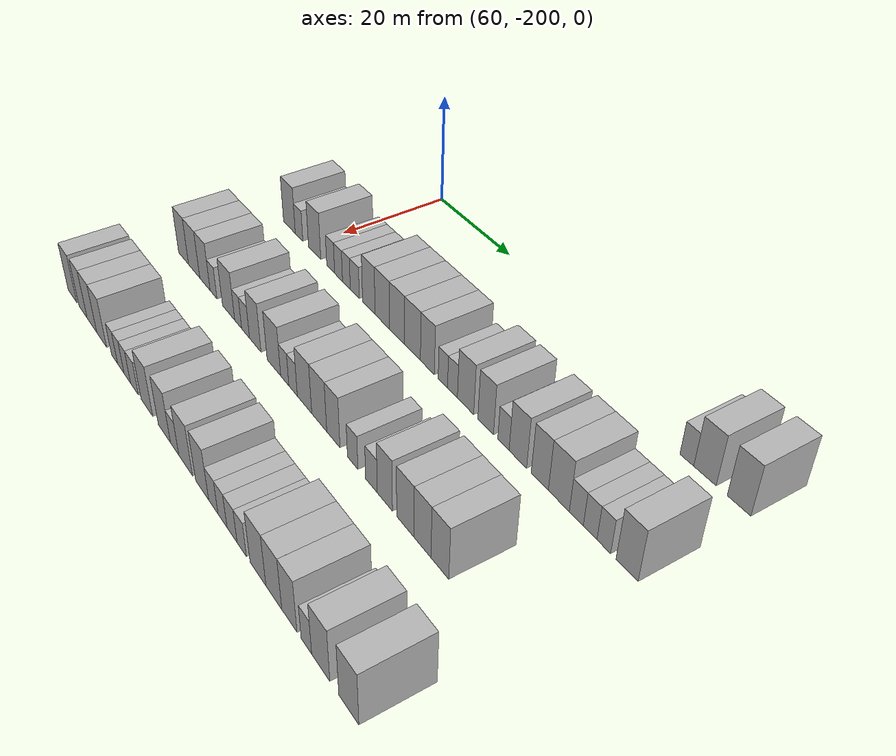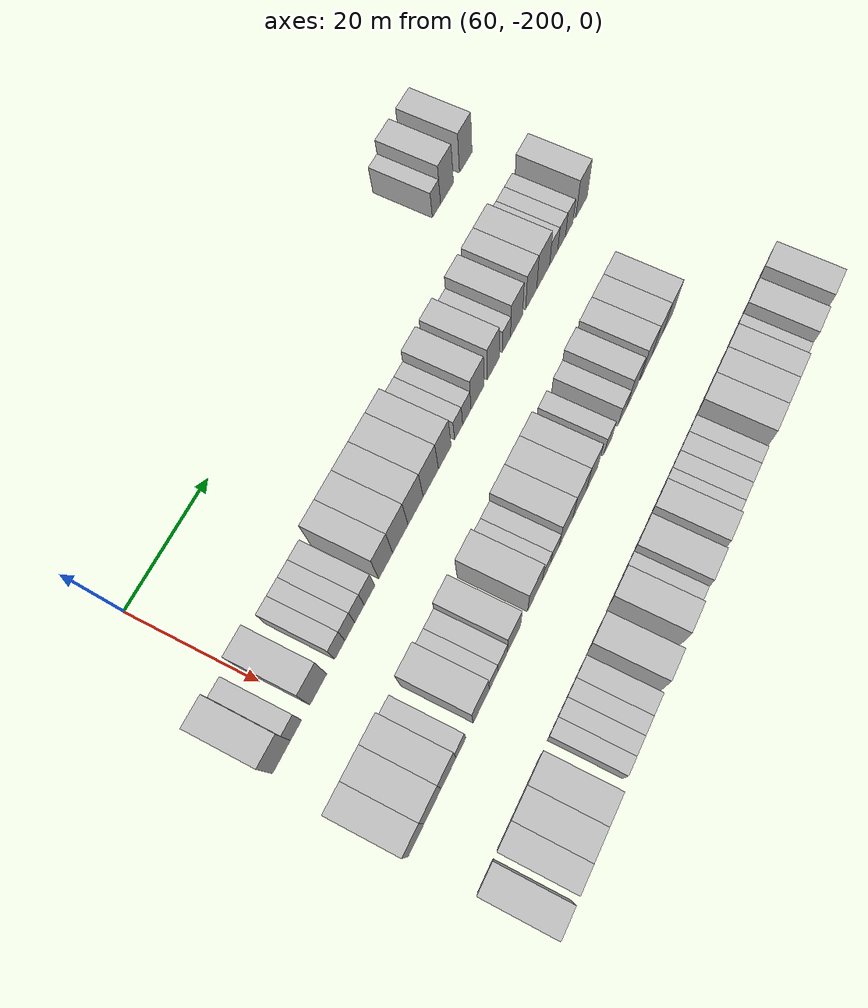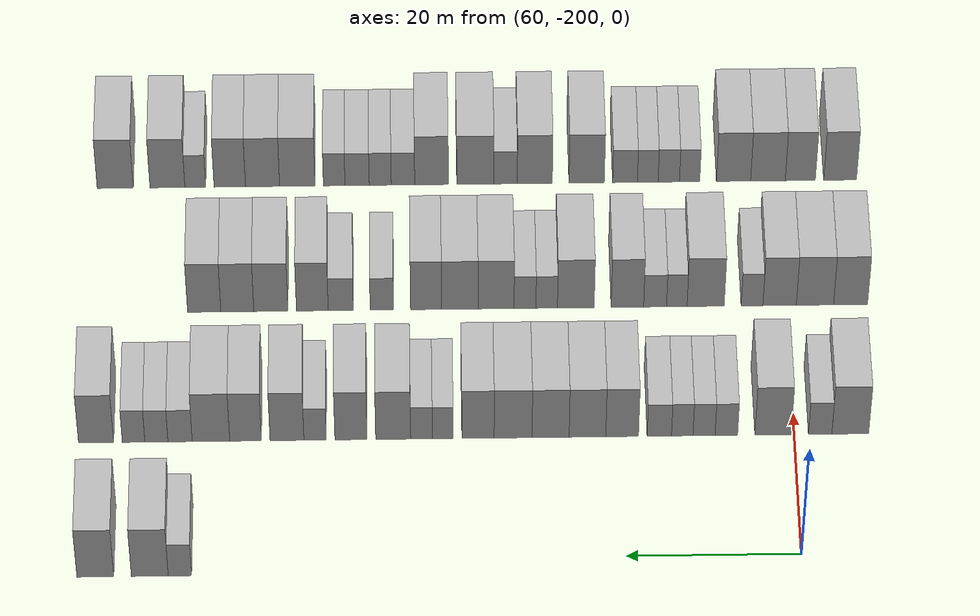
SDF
<sdf version="1.6">
 <world name="default">
  <model name="building_400">
   <static>1</static>
   <pose>63.0000 -129.1700 0 0.000000 0.000000 0.000000</pose>
   <link name="link">
    <pose>0 0 3.00 0 0 0</pose>
    <collision name="collision"><geometry><box><size>10.0000 2.6503 6.0000</size></box></geometry></collision>
    <visual name="visual">
     <cast_shadows>0</cast_shadows>
     <geometry><box><size>10.0000 2.6503 6.0000</size></box></geometry>
     <material>
      <script>
       <uri>model://HANNAS_wall/materials/scripts</uri>
       <uri>model://HANNAS_wall/materials/textures</uri>
       <name>vrc/HANNAS_wall</name>
      </script>
     </material>
    </visual>
   </link>
  </model>
  <model name="building_401">
   <static>1</static>
   <pose>63.0000 -125.7518 0 0.000000 0.000000 0.000000</pose>
   <link name="link">
    <pose>0 0 4.50 0 0 0</pose>
    <collision name="collision"><geometry><box><size>10.0000 4.1862 9.0000</size></box></geometry></collision>
    <visual name="visual">
     <cast_shadows>0</cast_shadows>
     <geometry><box><size>10.0000 4.1862 9.0000</size></box></geometry>
     <material>
      <script>
       <uri>model://HANNAS_wall/materials/scripts</uri>
       <uri>model://HANNAS_wall/materials/textures</uri>
       <name>vrc/HANNAS_wall</name>
      </script>
     </material>
    </visual>
   </link>
  </model>
  <model name="building_402">
   <static>1</static>
   <pose>63.0000 -119.5683 0 0.000000 0.000000 0.000000</pose>
   <link name="link">
    <pose>0 0 4.50 0 0 0</pose>
    <collision name="collision"><geometry><box><size>10.0000 4.1808 9.0000</size></box></geometry></collision>
    <visual name="visual">
     <cast_shadows>0</cast_shadows>
     <geometry><box><size>10.0000 4.1808 9.0000</size></box></geometry>
     <material>
      <script>
       <uri>model://HANNAS_wall/materials/scripts</uri>
       <uri>model://HANNAS_wall/materials/textures</uri>
       <name>vrc/HANNAS_wall</name>
      </script>
     </material>
    </visual>
   </link>
  </model>
  <model name="building_556">
   <static>1</static>
   <pose>82.0000 -206.4592 0 0.000000 0.000000 0.000000</pose>
   <link name="link">
    <pose>0 0 4.50 0 0 0</pose>
    <collision name="collision"><geometry><box><size>10.0000 4.2686 9.0000</size></box></geometry></collision>
    <visual name="visual">
     <cast_shadows>0</cast_shadows>
     <geometry><box><size>10.0000 4.2686 9.0000</size></box></geometry>
     <material>
      <script>
       <uri>model://HANNAS_wall/materials/scripts</uri>
       <uri>model://HANNAS_wall/materials/textures</uri>
       <name>vrc/HANNAS_wall</name>
      </script>
     </material>
    </visual>
   </link>
  </model>
  <model name="building_557">
   <static>1</static>
   <pose>82.0000 -202.9683 0 0.000000 0.000000 0.000000</pose>
   <link name="link">
    <pose>0 0 3.00 0 0 0</pose>
    <collision name="collision"><geometry><box><size>10.0000 2.7130 6.0000</size></box></geometry></collision>
    <visual name="visual">
     <cast_shadows>0</cast_shadows>
     <geometry><box><size>10.0000 2.7130 6.0000</size></box></geometry>
     <material>
      <script>
       <uri>model://HANNAS_wall/materials/scripts</uri>
       <uri>model://HANNAS_wall/materials/textures</uri>
       <name>vrc/HANNAS_wall</name>
      </script>
     </material>
    </visual>
   </link>
  </model>
  <model name="building_558">
   <static>1</static>
   <pose>82.0000 -197.5055 0 0.000000 0.000000 0.000000</pose>
   <link name="link">
    <pose>0 0 4.50 0 0 0</pose>
    <collision name="collision"><geometry><box><size>10.0000 4.2127 9.0000</size></box></geometry></collision>
    <visual name="visual">
     <cast_shadows>0</cast_shadows>
     <geometry><box><size>10.0000 4.2127 9.0000</size></box></geometry>
     <material>
      <script>
       <uri>model://HANNAS_wall/materials/scripts</uri>
       <uri>model://HANNAS_wall/materials/textures</uri>
       <name>vrc/HANNAS_wall</name>
      </script>
     </material>
    </visual>
   </link>
  </model>
  <model name="building_559">
   <static>1</static>
   <pose>82.0000 -192.0942 0 0.000000 0.000000 0.000000</pose>
   <link name="link">
    <pose>0 0 3.00 0 0 0</pose>
    <collision name="collision"><geometry><box><size>10.0000 2.6098 6.0000</size></box></geometry></collision>
    <visual name="visual">
     <cast_shadows>0</cast_shadows>
     <geometry><box><size>10.0000 2.6098 6.0000</size></box></geometry>
     <material>
      <script>
       <uri>model://HANNAS_wall/materials/scripts</uri>
       <uri>model://HANNAS_wall/materials/textures</uri>
       <name>vrc/HANNAS_wall</name>
      </script>
     </material>
    </visual>
   </link>
  </model>
  <model name="building_560">
   <static>1</static>
   <pose>82.0000 -189.5093 0 0.000000 0.000000 0.000000</pose>
   <link name="link">
    <pose>0 0 3.00 0 0 0</pose>
    <collision name="collision"><geometry><box><size>10.0000 2.5600 6.0000</size></box></geometry></collision>
    <visual name="visual">
     <cast_shadows>0</cast_shadows>
     <geometry><box><size>10.0000 2.5600 6.0000</size></box></geometry>
     <material>
      <script>
       <uri>model://HANNAS_wall/materials/scripts</uri>
       <uri>model://HANNAS_wall/materials/textures</uri>
       <name>vrc/HANNAS_wall</name>
      </script>
     </material>
    </visual>
   </link>
  </model>
  <model name="building_561">
   <static>1</static>
   <pose>82.0000 -186.9826 0 0.000000 0.000000 0.000000</pose>
   <link name="link">
    <pose>0 0 3.00 0 0 0</pose>
    <collision name="collision"><geometry><box><size>10.0000 2.4934 6.0000</size></box></geometry></collision>
    <visual name="visual">
     <cast_shadows>0</cast_shadows>
     <geometry><box><size>10.0000 2.4934 6.0000</size></box></geometry>
     <material>
      <script>
       <uri>model://HANNAS_wall/materials/scripts</uri>
       <uri>model://HANNAS_wall/materials/textures</uri>
       <name>vrc/HANNAS_wall</name>
      </script>
     </material>
    </visual>
   </link>
  </model>
  <model name="building_562">
   <static>1</static>
   <pose>82.0000 -184.3255 0 0.000000 0.000000 0.000000</pose>
   <link name="link">
    <pose>0 0 3.00 0 0 0</pose>
    <collision name="collision"><geometry><box><size>10.0000 2.8208 6.0000</size></box></geometry></collision>
    <visual name="visual">
     <cast_shadows>0</cast_shadows>
     <geometry><box><size>10.0000 2.8208 6.0000</size></box></geometry>
     <material>
      <script>
       <uri>model://HANNAS_wall/materials/scripts</uri>
       <uri>model://HANNAS_wall/materials/textures</uri>
       <name>vrc/HANNAS_wall</name>
      </script>
     </material>
    </visual>
   </link>
  </model>
  <model name="building_563">
   <static>1</static>
   <pose>82.0000 -180.0190 0 0.000000 0.000000 0.000000</pose>
   <link name="link">
    <pose>0 0 4.50 0 0 0</pose>
    <collision name="collision"><geometry><box><size>10.0000 3.7922 9.0000</size></box></geometry></collision>
    <visual name="visual">
     <cast_shadows>0</cast_shadows>
     <geometry><box><size>10.0000 3.7922 9.0000</size></box></geometry>
     <material>
      <script>
       <uri>model://HANNAS_wall/materials/scripts</uri>
       <uri>model://HANNAS_wall/materials/textures</uri>
       <name>vrc/HANNAS_wall</name>
      </script>
     </material>
    </visual>
   </link>
  </model>
  <model name="building_564">
   <static>1</static>
   <pose>82.0000 -175.9996 0 0.000000 0.000000 0.000000</pose>
   <link name="link">
    <pose>0 0 4.50 0 0 0</pose>
    <collision name="collision"><geometry><box><size>10.0000 4.2466 9.0000</size></box></geometry></collision>
    <visual name="visual">
     <cast_shadows>0</cast_shadows>
     <geometry><box><size>10.0000 4.2466 9.0000</size></box></geometry>
     <material>
      <script>
       <uri>model://HANNAS_wall/materials/scripts</uri>
       <uri>model://HANNAS_wall/materials/textures</uri>
       <name>vrc/HANNAS_wall</name>
      </script>
     </material>
    </visual>
   </link>
  </model>
  <model name="building_565">
   <static>1</static>
   <pose>82.0000 -171.7282 0 0.000000 0.000000 0.000000</pose>
   <link name="link">
    <pose>0 0 4.50 0 0 0</pose>
    <collision name="collision"><geometry><box><size>10.0000 4.2961 9.0000</size></box></geometry></collision>
    <visual name="visual">
     <cast_shadows>0</cast_shadows>
     <geometry><box><size>10.0000 4.2961 9.0000</size></box></geometry>
     <material>
      <script>
       <uri>model://HANNAS_wall/materials/scripts</uri>
       <uri>model://HANNAS_wall/materials/textures</uri>
       <name>vrc/HANNAS_wall</name>
      </script>
     </material>
    </visual>
   </link>
  </model>
  <model name="building_566">
   <static>1</static>
   <pose>82.0000 -167.3878 0 0.000000 0.000000 0.000000</pose>
   <link name="link">
    <pose>0 0 4.50 0 0 0</pose>
    <collision name="collision"><geometry><box><size>10.0000 4.3847 9.0000</size></box></geometry></collision>
    <visual name="visual">
     <cast_shadows>0</cast_shadows>
     <geometry><box><size>10.0000 4.3847 9.0000</size></box></geometry>
     <material>
      <script>
       <uri>model://HANNAS_wall/materials/scripts</uri>
       <uri>model://HANNAS_wall/materials/textures</uri>
       <name>vrc/HANNAS_wall</name>
      </script>
     </material>
    </visual>
   </link>
  </model>
  <model name="building_567">
   <static>1</static>
   <pose>82.0000 -163.3303 0 0.000000 0.000000 0.000000</pose>
   <link name="link">
    <pose>0 0 4.50 0 0 0</pose>
    <collision name="collision"><geometry><box><size>10.0000 3.7304 9.0000</size></box></geometry></collision>
    <visual name="visual">
     <cast_shadows>0</cast_shadows>
     <geometry><box><size>10.0000 3.7304 9.0000</size></box></geometry>
     <material>
      <script>
       <uri>model://HANNAS_wall/materials/scripts</uri>
       <uri>model://HANNAS_wall/materials/textures</uri>
       <name>vrc/HANNAS_wall</name>
      </script>
     </material>
    </visual>
   </link>
  </model>
  <model name="building_568">
   <static>1</static>
   <pose>82.0000 -159.2565 0 0.000000 0.000000 0.000000</pose>
   <link name="link">
    <pose>0 0 3.00 0 0 0</pose>
    <collision name="collision"><geometry><box><size>10.0000 2.4171 6.0000</size></box></geometry></collision>
    <visual name="visual">
     <cast_shadows>0</cast_shadows>
     <geometry><box><size>10.0000 2.4171 6.0000</size></box></geometry>
     <material>
      <script>
       <uri>model://HANNAS_wall/materials/scripts</uri>
       <uri>model://HANNAS_wall/materials/textures</uri>
       <name>vrc/HANNAS_wall</name>
      </script>
     </material>
    </visual>
   </link>
  </model>
  <model name="building_569">
   <static>1</static>
   <pose>82.0000 -156.7894 0 0.000000 0.000000 0.000000</pose>
   <link name="link">
    <pose>0 0 3.00 0 0 0</pose>
    <collision name="collision"><geometry><box><size>10.0000 2.5172 6.0000</size></box></geometry></collision>
    <visual name="visual">
     <cast_shadows>0</cast_shadows>
     <geometry><box><size>10.0000 2.5172 6.0000</size></box></geometry>
     <material>
      <script>
       <uri>model://HANNAS_wall/materials/scripts</uri>
       <uri>model://HANNAS_wall/materials/textures</uri>
       <name>vrc/HANNAS_wall</name>
      </script>
     </material>
    </visual>
   </link>
  </model>
  <model name="building_570">
   <static>1</static>
   <pose>82.0000 -153.5109 0 0.000000 0.000000 0.000000</pose>
   <link name="link">
    <pose>0 0 4.50 0 0 0</pose>
    <collision name="collision"><geometry><box><size>10.0000 4.0397 9.0000</size></box></geometry></collision>
    <visual name="visual">
     <cast_shadows>0</cast_shadows>
     <geometry><box><size>10.0000 4.0397 9.0000</size></box></geometry>
     <material>
      <script>
       <uri>model://HANNAS_wall/materials/scripts</uri>
       <uri>model://HANNAS_wall/materials/textures</uri>
       <name>vrc/HANNAS_wall</name>
      </script>
     </material>
    </visual>
   </link>
  </model>
  <model name="building_571">
   <static>1</static>
   <pose>82.0000 -148.6308 0 0.000000 0.000000 0.000000</pose>
   <link name="link">
    <pose>0 0 4.50 0 0 0</pose>
    <collision name="collision"><geometry><box><size>10.0000 3.7207 9.0000</size></box></geometry></collision>
    <visual name="visual">
     <cast_shadows>0</cast_shadows>
     <geometry><box><size>10.0000 3.7207 9.0000</size></box></geometry>
     <material>
      <script>
       <uri>model://HANNAS_wall/materials/scripts</uri>
       <uri>model://HANNAS_wall/materials/textures</uri>
       <name>vrc/HANNAS_wall</name>
      </script>
     </material>
    </visual>
   </link>
  </model>
  <model name="building_572">
   <static>1</static>
   <pose>82.0000 -144.4745 0 0.000000 0.000000 0.000000</pose>
   <link name="link">
    <pose>0 0 3.00 0 0 0</pose>
    <collision name="collision"><geometry><box><size>10.0000 2.5918 6.0000</size></box></geometry></collision>
    <visual name="visual">
     <cast_shadows>0</cast_shadows>
     <geometry><box><size>10.0000 2.5918 6.0000</size></box></geometry>
     <material>
      <script>
       <uri>model://HANNAS_wall/materials/scripts</uri>
       <uri>model://HANNAS_wall/materials/textures</uri>
       <name>vrc/HANNAS_wall</name>
      </script>
     </material>
    </visual>
   </link>
  </model>
  <model name="building_573">
   <static>1</static>
   <pose>82.0000 -141.2205 0 0.000000 0.000000 0.000000</pose>
   <link name="link">
    <pose>0 0 4.50 0 0 0</pose>
    <collision name="collision"><geometry><box><size>10.0000 3.9163 9.0000</size></box></geometry></collision>
    <visual name="visual">
     <cast_shadows>0</cast_shadows>
     <geometry><box><size>10.0000 3.9163 9.0000</size></box></geometry>
     <material>
      <script>
       <uri>model://HANNAS_wall/materials/scripts</uri>
       <uri>model://HANNAS_wall/materials/textures</uri>
       <name>vrc/HANNAS_wall</name>
      </script>
     </material>
    </visual>
   </link>
  </model>
  <model name="building_574">
   <static>1</static>
   <pose>82.0000 -136.4256 0 0.000000 0.000000 0.000000</pose>
   <link name="link">
    <pose>0 0 4.50 0 0 0</pose>
    <collision name="collision"><geometry><box><size>10.0000 3.6734 9.0000</size></box></geometry></collision>
    <visual name="visual">
     <cast_shadows>0</cast_shadows>
     <geometry><box><size>10.0000 3.6734 9.0000</size></box></geometry>
     <material>
      <script>
       <uri>model://HANNAS_wall/materials/scripts</uri>
       <uri>model://HANNAS_wall/materials/textures</uri>
       <name>vrc/HANNAS_wall</name>
      </script>
     </material>
    </visual>
   </link>
  </model>
  <model name="building_575">
   <static>1</static>
   <pose>82.0000 -132.4194 0 0.000000 0.000000 0.000000</pose>
   <link name="link">
    <pose>0 0 4.50 0 0 0</pose>
    <collision name="collision"><geometry><box><size>10.0000 4.3391 9.0000</size></box></geometry></collision>
    <visual name="visual">
     <cast_shadows>0</cast_shadows>
     <geometry><box><size>10.0000 4.3391 9.0000</size></box></geometry>
     <material>
      <script>
       <uri>model://HANNAS_wall/materials/scripts</uri>
       <uri>model://HANNAS_wall/materials/textures</uri>
       <name>vrc/HANNAS_wall</name>
      </script>
     </material>
    </visual>
   </link>
  </model>
  <model name="building_576">
   <static>1</static>
   <pose>82.0000 -128.8480 0 0.000000 0.000000 0.000000</pose>
   <link name="link">
    <pose>0 0 3.00 0 0 0</pose>
    <collision name="collision"><geometry><box><size>10.0000 2.8037 6.0000</size></box></geometry></collision>
    <visual name="visual">
     <cast_shadows>0</cast_shadows>
     <geometry><box><size>10.0000 2.8037 6.0000</size></box></geometry>
     <material>
      <script>
       <uri>model://HANNAS_wall/materials/scripts</uri>
       <uri>model://HANNAS_wall/materials/textures</uri>
       <name>vrc/HANNAS_wall</name>
      </script>
     </material>
    </visual>
   </link>
  </model>
  <model name="building_577">
   <static>1</static>
   <pose>82.0000 -126.1114 0 0.000000 0.000000 0.000000</pose>
   <link name="link">
    <pose>0 0 3.00 0 0 0</pose>
    <collision name="collision"><geometry><box><size>10.0000 2.6694 6.0000</size></box></geometry></collision>
    <visual name="visual">
     <cast_shadows>0</cast_shadows>
     <geometry><box><size>10.0000 2.6694 6.0000</size></box></geometry>
     <material>
      <script>
       <uri>model://HANNAS_wall/materials/scripts</uri>
       <uri>model://HANNAS_wall/materials/textures</uri>
       <name>vrc/HANNAS_wall</name>
      </script>
     </material>
    </visual>
   </link>
  </model>
  <model name="building_578">
   <static>1</static>
   <pose>82.0000 -123.4715 0 0.000000 0.000000 0.000000</pose>
   <link name="link">
    <pose>0 0 3.00 0 0 0</pose>
    <collision name="collision"><geometry><box><size>10.0000 2.6105 6.0000</size></box></geometry></collision>
    <visual name="visual">
     <cast_shadows>0</cast_shadows>
     <geometry><box><size>10.0000 2.6105 6.0000</size></box></geometry>
     <material>
      <script>
       <uri>model://HANNAS_wall/materials/scripts</uri>
       <uri>model://HANNAS_wall/materials/textures</uri>
       <name>vrc/HANNAS_wall</name>
      </script>
     </material>
    </visual>
   </link>
  </model>
  <model name="building_579">
   <static>1</static>
   <pose>82.0000 -119.1369 0 0.000000 0.000000 0.000000</pose>
   <link name="link">
    <pose>0 0 4.50 0 0 0</pose>
    <collision name="collision"><geometry><box><size>10.0000 4.0587 9.0000</size></box></geometry></collision>
    <visual name="visual">
     <cast_shadows>0</cast_shadows>
     <geometry><box><size>10.0000 4.0587 9.0000</size></box></geometry>
     <material>
      <script>
       <uri>model://HANNAS_wall/materials/scripts</uri>
       <uri>model://HANNAS_wall/materials/textures</uri>
       <name>vrc/HANNAS_wall</name>
      </script>
     </material>
    </visual>
   </link>
  </model>
  <model name="building_740">
   <static>1</static>
   <pose>101.0000 -207.5569 0 0.000000 0.000000 0.000000</pose>
   <link name="link">
    <pose>0 0 4.50 0 0 0</pose>
    <collision name="collision"><geometry><box><size>10.0000 4.0132 9.0000</size></box></geometry></collision>
    <visual name="visual">
     <cast_shadows>0</cast_shadows>
     <geometry><box><size>10.0000 4.0132 9.0000</size></box></geometry>
     <material>
      <script>
       <uri>model://HANNAS_wall/materials/scripts</uri>
       <uri>model://HANNAS_wall/materials/textures</uri>
       <name>vrc/HANNAS_wall</name>
      </script>
     </material>
    </visual>
   </link>
  </model>
  <model name="building_741">
   <static>1</static>
   <pose>101.0000 -203.3545 0 0.000000 0.000000 0.000000</pose>
   <link name="link">
    <pose>0 0 4.50 0 0 0</pose>
    <collision name="collision"><geometry><box><size>10.0000 4.3915 9.0000</size></box></geometry></collision>
    <visual name="visual">
     <cast_shadows>0</cast_shadows>
     <geometry><box><size>10.0000 4.3915 9.0000</size></box></geometry>
     <material>
      <script>
       <uri>model://HANNAS_wall/materials/scripts</uri>
       <uri>model://HANNAS_wall/materials/textures</uri>
       <name>vrc/HANNAS_wall</name>
      </script>
     </material>
    </visual>
   </link>
  </model>
  <model name="building_742">
   <static>1</static>
   <pose>101.0000 -199.1848 0 0.000000 0.000000 0.000000</pose>
   <link name="link">
    <pose>0 0 4.50 0 0 0</pose>
    <collision name="collision"><geometry><box><size>10.0000 3.9479 9.0000</size></box></geometry></collision>
    <visual name="visual">
     <cast_shadows>0</cast_shadows>
     <geometry><box><size>10.0000 3.9479 9.0000</size></box></geometry>
     <material>
      <script>
       <uri>model://HANNAS_wall/materials/scripts</uri>
       <uri>model://HANNAS_wall/materials/textures</uri>
       <name>vrc/HANNAS_wall</name>
      </script>
     </material>
    </visual>
   </link>
  </model>
  <model name="building_743">
   <static>1</static>
   <pose>101.0000 -195.9245 0 0.000000 0.000000 0.000000</pose>
   <link name="link">
    <pose>0 0 3.00 0 0 0</pose>
    <collision name="collision"><geometry><box><size>10.0000 2.5726 6.0000</size></box></geometry></collision>
    <visual name="visual">
     <cast_shadows>0</cast_shadows>
     <geometry><box><size>10.0000 2.5726 6.0000</size></box></geometry>
     <material>
      <script>
       <uri>model://HANNAS_wall/materials/scripts</uri>
       <uri>model://HANNAS_wall/materials/textures</uri>
       <name>vrc/HANNAS_wall</name>
      </script>
     </material>
    </visual>
   </link>
  </model>
  <model name="building_744">
   <static>1</static>
   <pose>101.0000 -190.4486 0 0.000000 0.000000 0.000000</pose>
   <link name="link">
    <pose>0 0 4.50 0 0 0</pose>
    <collision name="collision"><geometry><box><size>10.0000 4.3793 9.0000</size></box></geometry></collision>
    <visual name="visual">
     <cast_shadows>0</cast_shadows>
     <geometry><box><size>10.0000 4.3793 9.0000</size></box></geometry>
     <material>
      <script>
       <uri>model://HANNAS_wall/materials/scripts</uri>
       <uri>model://HANNAS_wall/materials/textures</uri>
       <name>vrc/HANNAS_wall</name>
      </script>
     </material>
    </visual>
   </link>
  </model>
  <model name="building_745">
   <static>1</static>
   <pose>101.0000 -187.0556 0 0.000000 0.000000 0.000000</pose>
   <link name="link">
    <pose>0 0 3.00 0 0 0</pose>
    <collision name="collision"><geometry><box><size>10.0000 2.4067 6.0000</size></box></geometry></collision>
    <visual name="visual">
     <cast_shadows>0</cast_shadows>
     <geometry><box><size>10.0000 2.4067 6.0000</size></box></geometry>
     <material>
      <script>
       <uri>model://HANNAS_wall/materials/scripts</uri>
       <uri>model://HANNAS_wall/materials/textures</uri>
       <name>vrc/HANNAS_wall</name>
      </script>
     </material>
    </visual>
   </link>
  </model>
  <model name="building_746">
   <static>1</static>
   <pose>101.0000 -184.4941 0 0.000000 0.000000 0.000000</pose>
   <link name="link">
    <pose>0 0 3.00 0 0 0</pose>
    <collision name="collision"><geometry><box><size>10.0000 2.7163 6.0000</size></box></geometry></collision>
    <visual name="visual">
     <cast_shadows>0</cast_shadows>
     <geometry><box><size>10.0000 2.7163 6.0000</size></box></geometry>
     <material>
      <script>
       <uri>model://HANNAS_wall/materials/scripts</uri>
       <uri>model://HANNAS_wall/materials/textures</uri>
       <name>vrc/HANNAS_wall</name>
      </script>
     </material>
    </visual>
   </link>
  </model>
  <model name="building_747">
   <static>1</static>
   <pose>101.0000 -181.2190 0 0.000000 0.000000 0.000000</pose>
   <link name="link">
    <pose>0 0 4.50 0 0 0</pose>
    <collision name="collision"><geometry><box><size>10.0000 3.8339 9.0000</size></box></geometry></collision>
    <visual name="visual">
     <cast_shadows>0</cast_shadows>
     <geometry><box><size>10.0000 3.8339 9.0000</size></box></geometry>
     <material>
      <script>
       <uri>model://HANNAS_wall/materials/scripts</uri>
       <uri>model://HANNAS_wall/materials/textures</uri>
       <name>vrc/HANNAS_wall</name>
      </script>
     </material>
    </visual>
   </link>
  </model>
  <model name="building_748">
   <static>1</static>
   <pose>101.0000 -175.1398 0 0.000000 0.000000 0.000000</pose>
   <link name="link">
    <pose>0 0 4.50 0 0 0</pose>
    <collision name="collision"><geometry><box><size>10.0000 4.3245 9.0000</size></box></geometry></collision>
    <visual name="visual">
     <cast_shadows>0</cast_shadows>
     <geometry><box><size>10.0000 4.3245 9.0000</size></box></geometry>
     <material>
      <script>
       <uri>model://HANNAS_wall/materials/scripts</uri>
       <uri>model://HANNAS_wall/materials/textures</uri>
       <name>vrc/HANNAS_wall</name>
      </script>
     </material>
    </visual>
   </link>
  </model>
  <model name="building_749">
   <static>1</static>
   <pose>101.0000 -171.7110 0 0.000000 0.000000 0.000000</pose>
   <link name="link">
    <pose>0 0 3.00 0 0 0</pose>
    <collision name="collision"><geometry><box><size>10.0000 2.5331 6.0000</size></box></geometry></collision>
    <visual name="visual">
     <cast_shadows>0</cast_shadows>
     <geometry><box><size>10.0000 2.5331 6.0000</size></box></geometry>
     <material>
      <script>
       <uri>model://HANNAS_wall/materials/scripts</uri>
       <uri>model://HANNAS_wall/materials/textures</uri>
       <name>vrc/HANNAS_wall</name>
      </script>
     </material>
    </visual>
   </link>
  </model>
  <model name="building_750">
   <static>1</static>
   <pose>101.0000 -169.1522 0 0.000000 0.000000 0.000000</pose>
   <link name="link">
    <pose>0 0 3.00 0 0 0</pose>
    <collision name="collision"><geometry><box><size>10.0000 2.5846 6.0000</size></box></geometry></collision>
    <visual name="visual">
     <cast_shadows>0</cast_shadows>
     <geometry><box><size>10.0000 2.5846 6.0000</size></box></geometry>
     <material>
      <script>
       <uri>model://HANNAS_wall/materials/scripts</uri>
       <uri>model://HANNAS_wall/materials/textures</uri>
       <name>vrc/HANNAS_wall</name>
      </script>
     </material>
    </visual>
   </link>
  </model>
  <model name="building_751">
   <static>1</static>
   <pose>101.0000 -165.7373 0 0.000000 0.000000 0.000000</pose>
   <link name="link">
    <pose>0 0 4.50 0 0 0</pose>
    <collision name="collision"><geometry><box><size>10.0000 4.2453 9.0000</size></box></geometry></collision>
    <visual name="visual">
     <cast_shadows>0</cast_shadows>
     <geometry><box><size>10.0000 4.2453 9.0000</size></box></geometry>
     <material>
      <script>
       <uri>model://HANNAS_wall/materials/scripts</uri>
       <uri>model://HANNAS_wall/materials/textures</uri>
       <name>vrc/HANNAS_wall</name>
      </script>
     </material>
    </visual>
   </link>
  </model>
  <model name="building_752">
   <static>1</static>
   <pose>101.0000 -161.4705 0 0.000000 0.000000 0.000000</pose>
   <link name="link">
    <pose>0 0 4.50 0 0 0</pose>
    <collision name="collision"><geometry><box><size>10.0000 4.2882 9.0000</size></box></geometry></collision>
    <visual name="visual">
     <cast_shadows>0</cast_shadows>
     <geometry><box><size>10.0000 4.2882 9.0000</size></box></geometry>
     <material>
      <script>
       <uri>model://HANNAS_wall/materials/scripts</uri>
       <uri>model://HANNAS_wall/materials/textures</uri>
       <name>vrc/HANNAS_wall</name>
      </script>
     </material>
    </visual>
   </link>
  </model>
  <model name="building_753">
   <static>1</static>
   <pose>101.0000 -157.4978 0 0.000000 0.000000 0.000000</pose>
   <link name="link">
    <pose>0 0 4.50 0 0 0</pose>
    <collision name="collision"><geometry><box><size>10.0000 3.6571 9.0000</size></box></geometry></collision>
    <visual name="visual">
     <cast_shadows>0</cast_shadows>
     <geometry><box><size>10.0000 3.6571 9.0000</size></box></geometry>
     <material>
      <script>
       <uri>model://HANNAS_wall/materials/scripts</uri>
       <uri>model://HANNAS_wall/materials/textures</uri>
       <name>vrc/HANNAS_wall</name>
      </script>
     </material>
    </visual>
   </link>
  </model>
  <model name="building_754">
   <static>1</static>
   <pose>101.0000 -152.2875 0 0.000000 0.000000 0.000000</pose>
   <link name="link">
    <pose>0 0 3.00 0 0 0</pose>
    <collision name="collision"><geometry><box><size>10.0000 2.7636 6.0000</size></box></geometry></collision>
    <visual name="visual">
     <cast_shadows>0</cast_shadows>
     <geometry><box><size>10.0000 2.7636 6.0000</size></box></geometry>
     <material>
      <script>
       <uri>model://HANNAS_wall/materials/scripts</uri>
       <uri>model://HANNAS_wall/materials/textures</uri>
       <name>vrc/HANNAS_wall</name>
      </script>
     </material>
    </visual>
   </link>
  </model>
  <model name="building_755">
   <static>1</static>
   <pose>101.0000 -147.4315 0 0.000000 0.000000 0.000000</pose>
   <link name="link">
    <pose>0 0 3.00 0 0 0</pose>
    <collision name="collision"><geometry><box><size>10.0000 2.9485 6.0000</size></box></geometry></collision>
    <visual name="visual">
     <cast_shadows>0</cast_shadows>
     <geometry><box><size>10.0000 2.9485 6.0000</size></box></geometry>
     <material>
      <script>
       <uri>model://HANNAS_wall/materials/scripts</uri>
       <uri>model://HANNAS_wall/materials/textures</uri>
       <name>vrc/HANNAS_wall</name>
      </script>
     </material>
    </visual>
   </link>
  </model>
  <model name="building_756">
   <static>1</static>
   <pose>101.0000 -144.0887 0 0.000000 0.000000 0.000000</pose>
   <link name="link">
    <pose>0 0 4.50 0 0 0</pose>
    <collision name="collision"><geometry><box><size>10.0000 3.7370 9.0000</size></box></geometry></collision>
    <visual name="visual">
     <cast_shadows>0</cast_shadows>
     <geometry><box><size>10.0000 3.7370 9.0000</size></box></geometry>
     <material>
      <script>
       <uri>model://HANNAS_wall/materials/scripts</uri>
       <uri>model://HANNAS_wall/materials/textures</uri>
       <name>vrc/HANNAS_wall</name>
      </script>
     </material>
    </visual>
   </link>
  </model>
  <model name="building_757">
   <static>1</static>
   <pose>101.0000 -139.2078 0 0.000000 0.000000 0.000000</pose>
   <link name="link">
    <pose>0 0 4.50 0 0 0</pose>
    <collision name="collision"><geometry><box><size>10.0000 4.0248 9.0000</size></box></geometry></collision>
    <visual name="visual">
     <cast_shadows>0</cast_shadows>
     <geometry><box><size>10.0000 4.0248 9.0000</size></box></geometry>
     <material>
      <script>
       <uri>model://HANNAS_wall/materials/scripts</uri>
       <uri>model://HANNAS_wall/materials/textures</uri>
       <name>vrc/HANNAS_wall</name>
      </script>
     </material>
    </visual>
   </link>
  </model>
  <model name="building_758">
   <static>1</static>
   <pose>101.0000 -135.2522 0 0.000000 0.000000 0.000000</pose>
   <link name="link">
    <pose>0 0 4.50 0 0 0</pose>
    <collision name="collision"><geometry><box><size>10.0000 3.8865 9.0000</size></box></geometry></collision>
    <visual name="visual">
     <cast_shadows>0</cast_shadows>
     <geometry><box><size>10.0000 3.8865 9.0000</size></box></geometry>
     <material>
      <script>
       <uri>model://HANNAS_wall/materials/scripts</uri>
       <uri>model://HANNAS_wall/materials/textures</uri>
       <name>vrc/HANNAS_wall</name>
      </script>
     </material>
    </visual>
   </link>
  </model>
  <model name="building_759">
   <static>1</static>
   <pose>101.0000 -131.3515 0 0.000000 0.000000 0.000000</pose>
   <link name="link">
    <pose>0 0 4.50 0 0 0</pose>
    <collision name="collision"><geometry><box><size>10.0000 3.9148 9.0000</size></box></geometry></collision>
    <visual name="visual">
     <cast_shadows>0</cast_shadows>
     <geometry><box><size>10.0000 3.9148 9.0000</size></box></geometry>
     <material>
      <script>
       <uri>model://HANNAS_wall/materials/scripts</uri>
       <uri>model://HANNAS_wall/materials/textures</uri>
       <name>vrc/HANNAS_wall</name>
      </script>
     </material>
    </visual>
   </link>
  </model>
  <model name="building_919">
   <static>1</static>
   <pose>120.0000 -207.3571 0 0.000000 0.000000 0.000000</pose>
   <link name="link">
    <pose>0 0 4.50 0 0 0</pose>
    <collision name="collision"><geometry><box><size>10.0000 3.9413 9.0000</size></box></geometry></collision>
    <visual name="visual">
     <cast_shadows>0</cast_shadows>
     <geometry><box><size>10.0000 3.9413 9.0000</size></box></geometry>
     <material>
      <script>
       <uri>model://HANNAS_wall/materials/scripts</uri>
       <uri>model://HANNAS_wall/materials/textures</uri>
       <name>vrc/HANNAS_wall</name>
      </script>
     </material>
    </visual>
   </link>
  </model>
  <model name="building_920">
   <static>1</static>
   <pose>120.0000 -202.5797 0 0.000000 0.000000 0.000000</pose>
   <link name="link">
    <pose>0 0 4.50 0 0 0</pose>
    <collision name="collision"><geometry><box><size>10.0000 3.6135 9.0000</size></box></geometry></collision>
    <visual name="visual">
     <cast_shadows>0</cast_shadows>
     <geometry><box><size>10.0000 3.6135 9.0000</size></box></geometry>
     <material>
      <script>
       <uri>model://HANNAS_wall/materials/scripts</uri>
       <uri>model://HANNAS_wall/materials/textures</uri>
       <name>vrc/HANNAS_wall</name>
      </script>
     </material>
    </visual>
   </link>
  </model>
  <model name="building_921">
   <static>1</static>
   <pose>120.0000 -198.6935 0 0.000000 0.000000 0.000000</pose>
   <link name="link">
    <pose>0 0 4.50 0 0 0</pose>
    <collision name="collision"><geometry><box><size>10.0000 4.1589 9.0000</size></box></geometry></collision>
    <visual name="visual">
     <cast_shadows>0</cast_shadows>
     <geometry><box><size>10.0000 4.1589 9.0000</size></box></geometry>
     <material>
      <script>
       <uri>model://HANNAS_wall/materials/scripts</uri>
       <uri>model://HANNAS_wall/materials/textures</uri>
       <name>vrc/HANNAS_wall</name>
      </script>
     </material>
    </visual>
   </link>
  </model>
  <model name="building_922">
   <static>1</static>
   <pose>120.0000 -194.5588 0 0.000000 0.000000 0.000000</pose>
   <link name="link">
    <pose>0 0 4.50 0 0 0</pose>
    <collision name="collision"><geometry><box><size>10.0000 4.1106 9.0000</size></box></geometry></collision>
    <visual name="visual">
     <cast_shadows>0</cast_shadows>
     <geometry><box><size>10.0000 4.1106 9.0000</size></box></geometry>
     <material>
      <script>
       <uri>model://HANNAS_wall/materials/scripts</uri>
       <uri>model://HANNAS_wall/materials/textures</uri>
       <name>vrc/HANNAS_wall</name>
      </script>
     </material>
    </visual>
   </link>
  </model>
  <model name="building_923">
   <static>1</static>
   <pose>120.0000 -189.2822 0 0.000000 0.000000 0.000000</pose>
   <link name="link">
    <pose>0 0 3.00 0 0 0</pose>
    <collision name="collision"><geometry><box><size>10.0000 2.4426 6.0000</size></box></geometry></collision>
    <visual name="visual">
     <cast_shadows>0</cast_shadows>
     <geometry><box><size>10.0000 2.4426 6.0000</size></box></geometry>
     <material>
      <script>
       <uri>model://HANNAS_wall/materials/scripts</uri>
       <uri>model://HANNAS_wall/materials/textures</uri>
       <name>vrc/HANNAS_wall</name>
      </script>
     </material>
    </visual>
   </link>
  </model>
  <model name="building_924">
   <static>1</static>
   <pose>120.0000 -186.7838 0 0.000000 0.000000 0.000000</pose>
   <link name="link">
    <pose>0 0 3.00 0 0 0</pose>
    <collision name="collision"><geometry><box><size>10.0000 2.5542 6.0000</size></box></geometry></collision>
    <visual name="visual">
     <cast_shadows>0</cast_shadows>
     <geometry><box><size>10.0000 2.5542 6.0000</size></box></geometry>
     <material>
      <script>
       <uri>model://HANNAS_wall/materials/scripts</uri>
       <uri>model://HANNAS_wall/materials/textures</uri>
       <name>vrc/HANNAS_wall</name>
      </script>
     </material>
    </visual>
   </link>
  </model>
  <model name="building_925">
   <static>1</static>
   <pose>120.0000 -184.2609 0 0.000000 0.000000 0.000000</pose>
   <link name="link">
    <pose>0 0 3.00 0 0 0</pose>
    <collision name="collision"><geometry><box><size>10.0000 2.4916 6.0000</size></box></geometry></collision>
    <visual name="visual">
     <cast_shadows>0</cast_shadows>
     <geometry><box><size>10.0000 2.4916 6.0000</size></box></geometry>
     <material>
      <script>
       <uri>model://HANNAS_wall/materials/scripts</uri>
       <uri>model://HANNAS_wall/materials/textures</uri>
       <name>vrc/HANNAS_wall</name>
      </script>
     </material>
    </visual>
   </link>
  </model>
  <model name="building_926">
   <static>1</static>
   <pose>120.0000 -181.5287 0 0.000000 0.000000 0.000000</pose>
   <link name="link">
    <pose>0 0 3.00 0 0 0</pose>
    <collision name="collision"><geometry><box><size>10.0000 2.9729 6.0000</size></box></geometry></collision>
    <visual name="visual">
     <cast_shadows>0</cast_shadows>
     <geometry><box><size>10.0000 2.9729 6.0000</size></box></geometry>
     <material>
      <script>
       <uri>model://HANNAS_wall/materials/scripts</uri>
       <uri>model://HANNAS_wall/materials/textures</uri>
       <name>vrc/HANNAS_wall</name>
      </script>
     </material>
    </visual>
   </link>
  </model>
  <model name="building_927">
   <static>1</static>
   <pose>120.0000 -176.9233 0 0.000000 0.000000 0.000000</pose>
   <link name="link">
    <pose>0 0 4.50 0 0 0</pose>
    <collision name="collision"><geometry><box><size>10.0000 4.2379 9.0000</size></box></geometry></collision>
    <visual name="visual">
     <cast_shadows>0</cast_shadows>
     <geometry><box><size>10.0000 4.2379 9.0000</size></box></geometry>
     <material>
      <script>
       <uri>model://HANNAS_wall/materials/scripts</uri>
       <uri>model://HANNAS_wall/materials/textures</uri>
       <name>vrc/HANNAS_wall</name>
      </script>
     </material>
    </visual>
   </link>
  </model>
  <model name="building_928">
   <static>1</static>
   <pose>120.0000 -170.7018 0 0.000000 0.000000 0.000000</pose>
   <link name="link">
    <pose>0 0 4.50 0 0 0</pose>
    <collision name="collision"><geometry><box><size>10.0000 4.2049 9.0000</size></box></geometry></collision>
    <visual name="visual">
     <cast_shadows>0</cast_shadows>
     <geometry><box><size>10.0000 4.2049 9.0000</size></box></geometry>
     <material>
      <script>
       <uri>model://HANNAS_wall/materials/scripts</uri>
       <uri>model://HANNAS_wall/materials/textures</uri>
       <name>vrc/HANNAS_wall</name>
      </script>
     </material>
    </visual>
   </link>
  </model>
  <model name="building_929">
   <static>1</static>
   <pose>120.0000 -167.2003 0 0.000000 0.000000 0.000000</pose>
   <link name="link">
    <pose>0 0 3.00 0 0 0</pose>
    <collision name="collision"><geometry><box><size>10.0000 2.7983 6.0000</size></box></geometry></collision>
    <visual name="visual">
     <cast_shadows>0</cast_shadows>
     <geometry><box><size>10.0000 2.7983 6.0000</size></box></geometry>
     <material>
      <script>
       <uri>model://HANNAS_wall/materials/scripts</uri>
       <uri>model://HANNAS_wall/materials/textures</uri>
       <name>vrc/HANNAS_wall</name>
      </script>
     </material>
    </visual>
   </link>
  </model>
  <model name="building_930">
   <static>1</static>
   <pose>120.0000 -163.5717 0 0.000000 0.000000 0.000000</pose>
   <link name="link">
    <pose>0 0 4.50 0 0 0</pose>
    <collision name="collision"><geometry><box><size>10.0000 4.4588 9.0000</size></box></geometry></collision>
    <visual name="visual">
     <cast_shadows>0</cast_shadows>
     <geometry><box><size>10.0000 4.4588 9.0000</size></box></geometry>
     <material>
      <script>
       <uri>model://HANNAS_wall/materials/scripts</uri>
       <uri>model://HANNAS_wall/materials/textures</uri>
       <name>vrc/HANNAS_wall</name>
      </script>
     </material>
    </visual>
   </link>
  </model>
  <model name="building_931">
   <static>1</static>
   <pose>120.0000 -158.3199 0 0.000000 0.000000 0.000000</pose>
   <link name="link">
    <pose>0 0 4.50 0 0 0</pose>
    <collision name="collision"><geometry><box><size>10.0000 4.0448 9.0000</size></box></geometry></collision>
    <visual name="visual">
     <cast_shadows>0</cast_shadows>
     <geometry><box><size>10.0000 4.0448 9.0000</size></box></geometry>
     <material>
      <script>
       <uri>model://HANNAS_wall/materials/scripts</uri>
       <uri>model://HANNAS_wall/materials/textures</uri>
       <name>vrc/HANNAS_wall</name>
      </script>
     </material>
    </visual>
   </link>
  </model>
  <model name="building_932">
   <static>1</static>
   <pose>120.0000 -154.8917 0 0.000000 0.000000 0.000000</pose>
   <link name="link">
    <pose>0 0 3.00 0 0 0</pose>
    <collision name="collision"><geometry><box><size>10.0000 2.8116 6.0000</size></box></geometry></collision>
    <visual name="visual">
     <cast_shadows>0</cast_shadows>
     <geometry><box><size>10.0000 2.8116 6.0000</size></box></geometry>
     <material>
      <script>
       <uri>model://HANNAS_wall/materials/scripts</uri>
       <uri>model://HANNAS_wall/materials/textures</uri>
       <name>vrc/HANNAS_wall</name>
      </script>
     </material>
    </visual>
   </link>
  </model>
  <model name="building_933">
   <static>1</static>
   <pose>120.0000 -152.1648 0 0.000000 0.000000 0.000000</pose>
   <link name="link">
    <pose>0 0 3.00 0 0 0</pose>
    <collision name="collision"><geometry><box><size>10.0000 2.6424 6.0000</size></box></geometry></collision>
    <visual name="visual">
     <cast_shadows>0</cast_shadows>
     <geometry><box><size>10.0000 2.6424 6.0000</size></box></geometry>
     <material>
      <script>
       <uri>model://HANNAS_wall/materials/scripts</uri>
       <uri>model://HANNAS_wall/materials/textures</uri>
       <name>vrc/HANNAS_wall</name>
      </script>
     </material>
    </visual>
   </link>
  </model>
  <model name="building_934">
   <static>1</static>
   <pose>120.0000 -149.3919 0 0.000000 0.000000 0.000000</pose>
   <link name="link">
    <pose>0 0 3.00 0 0 0</pose>
    <collision name="collision"><geometry><box><size>10.0000 2.9033 6.0000</size></box></geometry></collision>
    <visual name="visual">
     <cast_shadows>0</cast_shadows>
     <geometry><box><size>10.0000 2.9033 6.0000</size></box></geometry>
     <material>
      <script>
       <uri>model://HANNAS_wall/materials/scripts</uri>
       <uri>model://HANNAS_wall/materials/textures</uri>
       <name>vrc/HANNAS_wall</name>
      </script>
     </material>
    </visual>
   </link>
  </model>
  <model name="building_935">
   <static>1</static>
   <pose>120.0000 -146.6480 0 0.000000 0.000000 0.000000</pose>
   <link name="link">
    <pose>0 0 3.00 0 0 0</pose>
    <collision name="collision"><geometry><box><size>10.0000 2.5845 6.0000</size></box></geometry></collision>
    <visual name="visual">
     <cast_shadows>0</cast_shadows>
     <geometry><box><size>10.0000 2.5845 6.0000</size></box></geometry>
     <material>
      <script>
       <uri>model://HANNAS_wall/materials/scripts</uri>
       <uri>model://HANNAS_wall/materials/textures</uri>
       <name>vrc/HANNAS_wall</name>
      </script>
     </material>
    </visual>
   </link>
  </model>
  <model name="building_936">
   <static>1</static>
   <pose>120.0000 -142.2300 0 0.000000 0.000000 0.000000</pose>
   <link name="link">
    <pose>0 0 4.50 0 0 0</pose>
    <collision name="collision"><geometry><box><size>10.0000 4.2516 9.0000</size></box></geometry></collision>
    <visual name="visual">
     <cast_shadows>0</cast_shadows>
     <geometry><box><size>10.0000 4.2516 9.0000</size></box></geometry>
     <material>
      <script>
       <uri>model://HANNAS_wall/materials/scripts</uri>
       <uri>model://HANNAS_wall/materials/textures</uri>
       <name>vrc/HANNAS_wall</name>
      </script>
     </material>
    </visual>
   </link>
  </model>
  <model name="building_937">
   <static>1</static>
   <pose>120.0000 -138.0558 0 0.000000 0.000000 0.000000</pose>
   <link name="link">
    <pose>0 0 4.50 0 0 0</pose>
    <collision name="collision"><geometry><box><size>10.0000 4.0969 9.0000</size></box></geometry></collision>
    <visual name="visual">
     <cast_shadows>0</cast_shadows>
     <geometry><box><size>10.0000 4.0969 9.0000</size></box></geometry>
     <material>
      <script>
       <uri>model://HANNAS_wall/materials/scripts</uri>
       <uri>model://HANNAS_wall/materials/textures</uri>
       <name>vrc/HANNAS_wall</name>
      </script>
     </material>
    </visual>
   </link>
  </model>
  <model name="building_938">
   <static>1</static>
   <pose>120.0000 -134.1245 0 0.000000 0.000000 0.000000</pose>
   <link name="link">
    <pose>0 0 4.50 0 0 0</pose>
    <collision name="collision"><geometry><box><size>10.0000 3.7656 9.0000</size></box></geometry></collision>
    <visual name="visual">
     <cast_shadows>0</cast_shadows>
     <geometry><box><size>10.0000 3.7656 9.0000</size></box></geometry>
     <material>
      <script>
       <uri>model://HANNAS_wall/materials/scripts</uri>
       <uri>model://HANNAS_wall/materials/textures</uri>
       <name>vrc/HANNAS_wall</name>
      </script>
     </material>
    </visual>
   </link>
  </model>
  <model name="building_939">
   <static>1</static>
   <pose>120.0000 -129.9902 0 0.000000 0.000000 0.000000</pose>
   <link name="link">
    <pose>0 0 3.00 0 0 0</pose>
    <collision name="collision"><geometry><box><size>10.0000 2.5031 6.0000</size></box></geometry></collision>
    <visual name="visual">
     <cast_shadows>0</cast_shadows>
     <geometry><box><size>10.0000 2.5031 6.0000</size></box></geometry>
     <material>
      <script>
       <uri>model://HANNAS_wall/materials/scripts</uri>
       <uri>model://HANNAS_wall/materials/textures</uri>
       <name>vrc/HANNAS_wall</name>
      </script>
     </material>
    </visual>
   </link>
  </model>
  <model name="building_940">
   <static>1</static>
   <pose>120.0000 -126.6497 0 0.000000 0.000000 0.000000</pose>
   <link name="link">
    <pose>0 0 4.50 0 0 0</pose>
    <collision name="collision"><geometry><box><size>10.0000 4.1778 9.0000</size></box></geometry></collision>
    <visual name="visual">
     <cast_shadows>0</cast_shadows>
     <geometry><box><size>10.0000 4.1778 9.0000</size></box></geometry>
     <material>
      <script>
       <uri>model://HANNAS_wall/materials/scripts</uri>
       <uri>model://HANNAS_wall/materials/textures</uri>
       <name>vrc/HANNAS_wall</name>
      </script>
     </material>
    </visual>
   </link>
  </model>
  <model name="building_941">
   <static>1</static>
   <pose>120.0000 -120.3985 0 0.000000 0.000000 0.000000</pose>
   <link name="link">
    <pose>0 0 4.50 0 0 0</pose>
    <collision name="collision"><geometry><box><size>10.0000 4.3246 9.0000</size></box></geometry></collision>
    <visual name="visual">
     <cast_shadows>0</cast_shadows>
     <geometry><box><size>10.0000 4.3246 9.0000</size></box></geometry>
     <material>
      <script>
       <uri>model://HANNAS_wall/materials/scripts</uri>
       <uri>model://HANNAS_wall/materials/textures</uri>
       <name>vrc/HANNAS_wall</name>
      </script>
     </material>
    </visual>
   </link>
  </model>
 </world>
</sdf>
